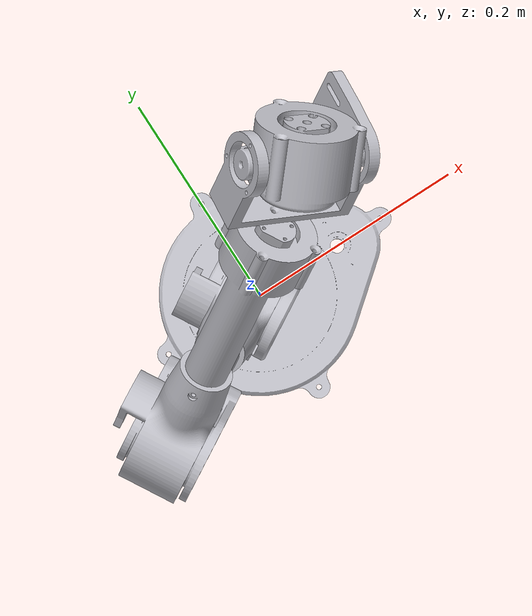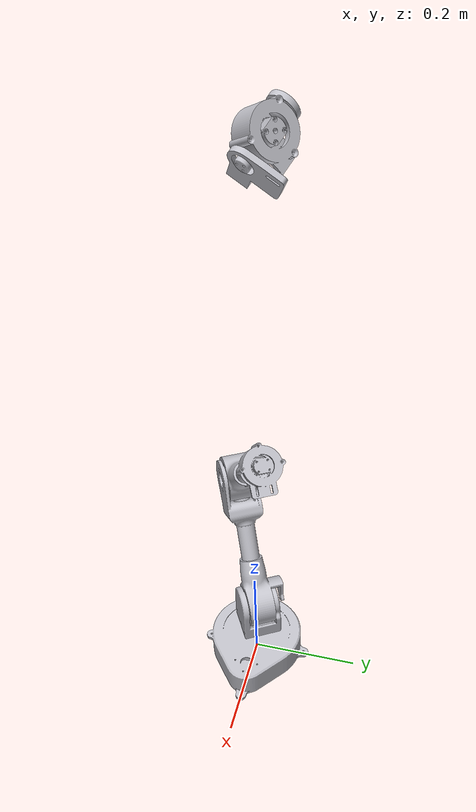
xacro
<?xml version="1.0" ?>
<robot name="ajgar" xmlns:xacro="http://www.ros.org/wiki/xacro">

<xacro:include filename="$(find ajgar_description)/urdf/materials.xacro" />
<xacro:include filename="$(find ajgar_description)/urdf/ajgar.trans" />
<xacro:include filename="$(find ajgar_description)/urdf/ajgar.gazebo" />
<link name="base_link">
  <inertial>
    <origin xyz="-0.008650825887724329 1.811391191547213e-07 0.03236837390888462" rpy="0 0 0"/>
    <mass value="9.059758934586307"/>
    <inertia ixx="0.021583" iyy="0.026795" izz="0.042202" ixy="-0.0" iyz="-0.0" ixz="0.000269"/>
  </inertial>
  <visual>
    <origin xyz="0 0 0" rpy="0 0 0"/>
    <geometry>
      <mesh filename="file://$(find ajgar_description)/meshes/base_link.stl" scale="0.001 0.001 0.001"/>
    </geometry>
    <material name="silver"/>
  </visual>
  <collision>
    <origin xyz="0 0 0" rpy="0 0 0"/>
    <geometry>
      <mesh filename="file://$(find ajgar_description)/meshes/base_link.stl" scale="0.001 0.001 0.001"/>
    </geometry>
  </collision>
</link>

<link name="base_top_1">
  <inertial>
    <origin xyz="0.0011538900214101422 -0.001972991642273625 0.03289309768621872" rpy="0 0 0"/>
    <mass value="1.4850383611977547"/>
    <inertia ixx="0.002033" iyy="0.001851" izz="0.001747" ixy="0.000158" iyz="0.000103" ixz="-5.9e-05"/>
  </inertial>
  <visual>
    <origin xyz="0.015013 -0.0 -0.06" rpy="0 0 0"/>
    <geometry>
      <mesh filename="file://$(find ajgar_description)/meshes/base_top_1.stl" scale="0.001 0.001 0.001"/>
    </geometry>
    <material name="silver"/>
  </visual>
  <collision>
    <origin xyz="0.015013 -0.0 -0.06" rpy="0 0 0"/>
    <geometry>
      <mesh filename="file://$(find ajgar_description)/meshes/base_top_1.stl" scale="0.001 0.001 0.001"/>
    </geometry>
  </collision>
</link>

<link name="shoulder_1">
  <inertial>
    <origin xyz="-0.0645416507450735 -0.007490465134806879 0.1033024338404234" rpy="0 0 0"/>
    <mass value="2.8383656665985857"/>
    <inertia ixx="0.025361" iyy="0.02813" izz="0.009403" ixy="-0.003171" iyz="0.0066" ixz="0.010094"/>
  </inertial>
  <visual>
    <origin xyz="0.002513 0.021651 -0.119368" rpy="0 0 0"/>
    <geometry>
      <mesh filename="file://$(find ajgar_description)/meshes/shoulder_1.stl" scale="0.001 0.001 0.001"/>
    </geometry>
    <material name="silver"/>
  </visual>
  <collision>
    <origin xyz="0.002513 0.021651 -0.119368" rpy="0 0 0"/>
    <geometry>
      <mesh filename="file://$(find ajgar_description)/meshes/shoulder_1.stl" scale="0.001 0.001 0.001"/>
    </geometry>
  </collision>
</link>

<link name="elbow_1">
  <inertial>
    <origin xyz="0.05168454617181718 0.060697692588179336 0.07557423446745226" rpy="0 0 0"/>
    <mass value="2.4072821039747727"/>
    <inertia ixx="0.017139" iyy="0.023806" izz="0.01394" ixy="-0.005334" iyz="-0.006001" ixz="-0.010844"/>
  </inertial>
  <visual>
    <origin xyz="0.114229 0.08615 -0.3428" rpy="0 0 0"/>
    <geometry>
      <mesh filename="file://$(find ajgar_description)/meshes/elbow_1.stl" scale="0.001 0.001 0.001"/>
    </geometry>
    <material name="silver"/>
  </visual>
  <collision>
    <origin xyz="0.114229 0.08615 -0.3428" rpy="0 0 0"/>
    <geometry>
      <mesh filename="file://$(find ajgar_description)/meshes/elbow_1.stl" scale="0.001 0.001 0.001"/>
    </geometry>
  </collision>
</link>

<link name="wrist_1">
  <inertial>
    <origin xyz="0.02535329522880813 0.013018429572597974 0.008074379596332282" rpy="0 0 0"/>
    <mass value="0.34678950211541076"/>
    <inertia ixx="0.000292" iyy="0.00059" izz="0.000541" ixy="-1.6e-05" iyz="-3.8e-05" ixz="0.000146"/>
  </inertial>
  <visual>
    <origin xyz="-0.037081 -0.030076 -0.531951" rpy="0 0 0"/>
    <geometry>
      <mesh filename="file://$(find ajgar_description)/meshes/wrist_1.stl" scale="0.001 0.001 0.001"/>
    </geometry>
    <material name="silver"/>
  </visual>
  <collision>
    <origin xyz="-0.037081 -0.030076 -0.531951" rpy="0 0 0"/>
    <geometry>
      <mesh filename="file://$(find ajgar_description)/meshes/wrist_1.stl" scale="0.001 0.001 0.001"/>
    </geometry>
  </collision>
</link>

<link name="suction_1">
  <inertial>
    <origin xyz="-0.028657029142344942 0.013241859961258373 0.01836189181829917" rpy="0 0 0"/>
    <mass value="0.6053245769138885"/>
    <inertia ixx="0.000451" iyy="0.000517" izz="0.00046" ixy="5.8e-05" iyz="5e-06" ixz="4.1e-05"/>
  </inertial>
  <visual>
    <origin xyz="-0.09374 -0.032578 -0.545271" rpy="0 0 0"/>
    <geometry>
      <mesh filename="file://$(find ajgar_description)/meshes/suction_1.stl" scale="0.001 0.001 0.001"/>
    </geometry>
    <material name="silver"/>
  </visual>
  <collision>
    <origin xyz="-0.09374 -0.032578 -0.545271" rpy="0 0 0"/>
    <geometry>
      <mesh filename="file://$(find ajgar_description)/meshes/suction_1.stl" scale="0.001 0.001 0.001"/>
    </geometry>
  </collision>
</link>

<link name="end__1">
  <inertial>
    <origin xyz="-0.0052979346222468 -0.006164456334156639 -0.0038664642263084303" rpy="0 0 0"/>
    <mass value="0.07630173554088619"/>
    <inertia ixx="6e-06" iyy="7e-06" izz="6e-06" ixy="1e-06" iyz="0.0" ixz="1e-06"/>
  </inertial>
  <visual>
    <origin xyz="-0.079058 -0.062766 -0.574295" rpy="0 0 0"/>
    <geometry>
      <mesh filename="file://$(find ajgar_description)/meshes/end__1.stl" scale="0.001 0.001 0.001"/>
    </geometry>
    <material name="silver"/>
  </visual>
  <collision>
    <origin xyz="-0.079058 -0.062766 -0.574295" rpy="0 0 0"/>
    <geometry>
      <mesh filename="file://$(find ajgar_description)/meshes/end__1.stl" scale="0.001 0.001 0.001"/>
    </geometry>
  </collision>
</link>

<joint name="base_joint" type="continuous">
  <origin xyz="-0.015013 0.0 0.06" rpy="0 0 0"/>
  <parent link="base_link"/>
  <child link="base_top_1"/>
  <axis xyz="0.0 0.0 1.0"/>
</joint>

<joint name="shoulder_joint" type="continuous">
  <origin xyz="0.0125 -0.021651 0.059368" rpy="0 0 0"/>
  <parent link="base_top_1"/>
  <child link="shoulder_1"/>
  <axis xyz="0.5 -0.866025 0.0"/>
</joint>

<joint name="arm_joint " type="continuous">
  <origin xyz="-0.111716 -0.064499 0.223432" rpy="0 0 0"/>
  <parent link="shoulder_1"/>
  <child link="elbow_1"/>
  <axis xyz="0.5 -0.866025 -0.0"/>
</joint>

<joint name="forearm_joint" type="continuous">
  <origin xyz="0.15131 0.116226 0.189151" rpy="0 0 0"/>
  <parent link="elbow_1"/>
  <child link="wrist_1"/>
  <axis xyz="0.612372 0.353553 0.707107"/>
</joint>

<joint name="end_joint" type="continuous">
  <origin xyz="0.056659 0.002502 0.01332" rpy="0 0 0"/>
  <parent link="wrist_1"/>
  <child link="suction_1"/>
  <axis xyz="-0.786566 0.362372 0.5"/>
</joint>

<joint name="suction_joint" type="continuous">
  <origin xyz="-0.014682 0.030188 0.029024" rpy="0 0 0"/>
  <parent link="suction_1"/>
  <child link="end__1"/>
  <axis xyz="-0.588579 -0.684883 -0.429547"/>
</joint>

</robot>

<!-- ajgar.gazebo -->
<robot name="ajgar" xmlns:xacro="http://www.ros.org/wiki/xacro" >

<xacro:property name="body_color" value="Gazebo/Silver" />

<gazebo>
  <plugin name="control" filename="libgazebo_ros_control.so"/>
</gazebo>
<gazebo reference="base_link">
  <material>${body_color}</material>
  <mu1>0.2</mu1>
  <mu2>0.2</mu2>
  <self_collide>true</self_collide>
  <gravity>true</gravity>
</gazebo>

<gazebo reference="base_top_1">
  <material>${body_color}</material>
  <mu1>0.2</mu1>
  <mu2>0.2</mu2>
  <self_collide>true</self_collide>
</gazebo>

<gazebo reference="shoulder_1">
  <material>${body_color}</material>
  <mu1>0.2</mu1>
  <mu2>0.2</mu2>
  <self_collide>true</self_collide>
</gazebo>

<gazebo reference="elbow_1">
  <material>${body_color}</material>
  <mu1>0.2</mu1>
  <mu2>0.2</mu2>
  <self_collide>true</self_collide>
</gazebo>

<gazebo reference="wrist_1">
  <material>${body_color}</material>
  <mu1>0.2</mu1>
  <mu2>0.2</mu2>
  <self_collide>true</self_collide>
</gazebo>

<gazebo reference="suction_1">
  <material>${body_color}</material>
  <mu1>0.2</mu1>
  <mu2>0.2</mu2>
  <self_collide>true</self_collide>
</gazebo>

<gazebo reference="end__1">
  <material>${body_color}</material>
  <mu1>0.2</mu1>
  <mu2>0.2</mu2>
  <self_collide>true</self_collide>
</gazebo>

</robot>
